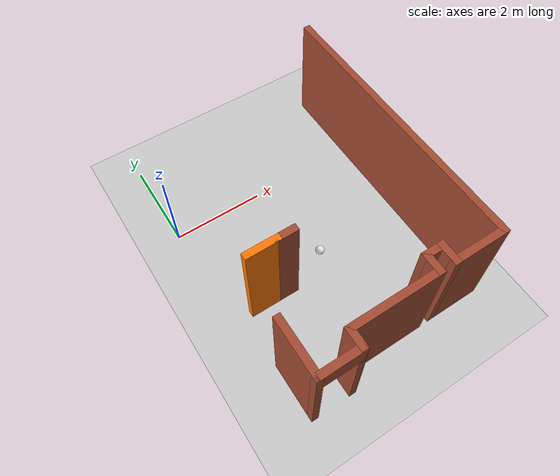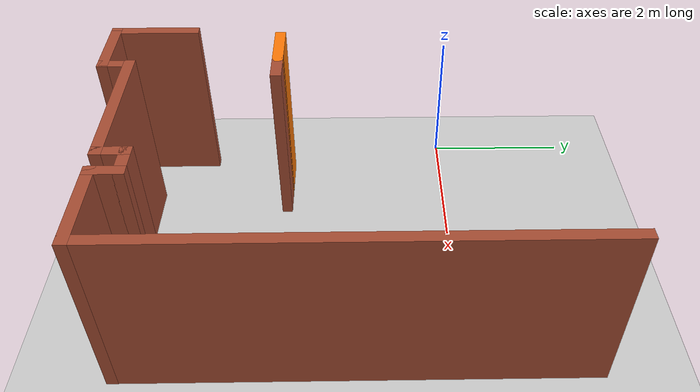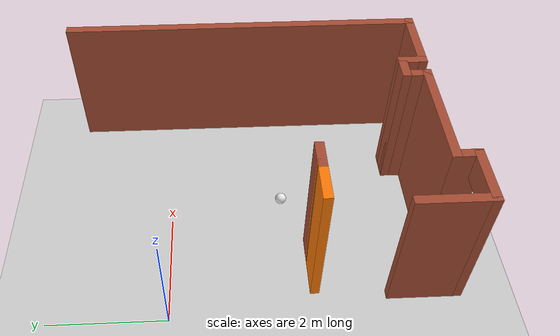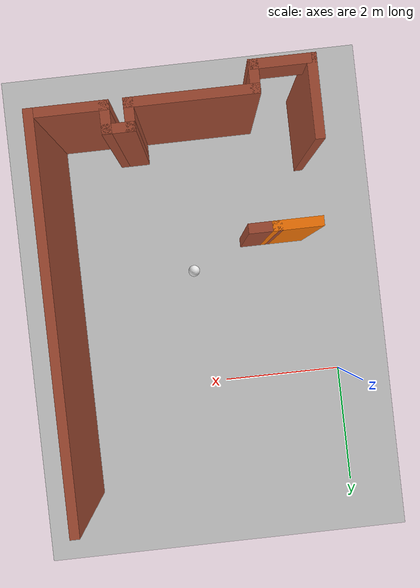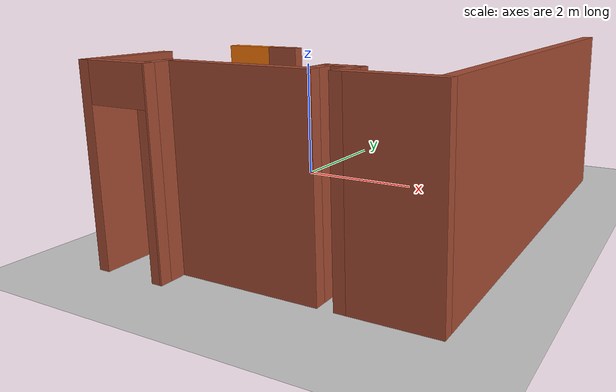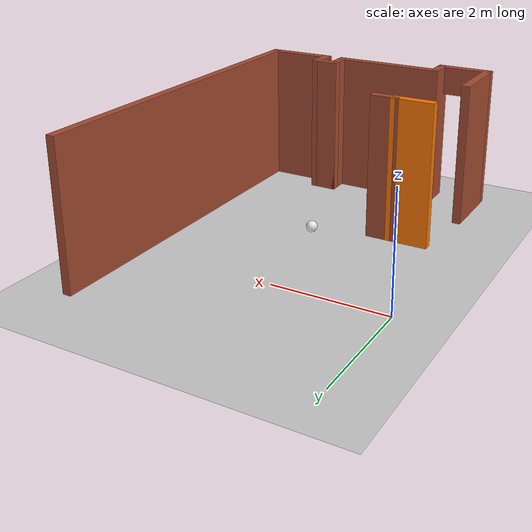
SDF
<sdf version="1.6">
 <world name="default">
  <model name="ground_plane">
   <static>1</static>
   <link name="link">
    <collision name="collision">
     <geometry><plane><normal>0 0 1</normal><size>100 100</size></plane></geometry>
     <surface><friction><ode><mu>100</mu><mu2>50</mu2></ode></friction></surface>
    </collision>
    <visual name="visual">
     <cast_shadows>0</cast_shadows>
     <geometry><plane><normal>0 0 1</normal><size>100 100</size></plane></geometry>
     <material>
      <script><uri>file://media/materials/scripts/gazebo.material</uri><name>Gazebo/Grey</name></script>
     </material>
    </visual>
   </link>
  </model>
  <model name="Home">
   <link name="Wall_10">
    <pose>0.974216 -1.55872 0 0 -0 0</pose>
    <visual name="Wall_10_Visual">
     <pose>0 0 1.25 0 -0 0</pose>
     <geometry><box><size>0.5 0.15 2.5</size></box></geometry>
     <material>
      <script><uri>file://media/materials/scripts/gazebo.material</uri><name>Gazebo/Bricks</name></script>
      <ambient>1 1 1 1</ambient>
     </material>
     <meta><layer>0</layer></meta>
    </visual>
    <collision name="Wall_10_Collision">
     <pose>0 0 1.25 0 -0 0</pose>
     <geometry><box><size>0.5 0.15 2.5</size></box></geometry>
     <surface>
      <friction>
       <ode><mu>1</mu><mu2>1</mu2><fdir1>0 0 0</fdir1><slip1>0</slip1><slip2>0</slip2></ode>
       <torsional>
        <coefficient>1</coefficient>
        <patch_radius>0</patch_radius>
        <surface_radius>0</surface_radius>
        <use_patch_radius>1</use_patch_radius>
        <ode><slip>0</slip></ode>
       </torsional>
      </friction>
      <bounce><restitution_coefficient>0</restitution_coefficient><threshold>1e+06</threshold></bounce>
      <contact>
       <collide_without_contact>0</collide_without_contact>
       <collide_without_contact_bitmask>1</collide_without_contact_bitmask>
       <collide_bitmask>1</collide_bitmask>
       <ode>
        <soft_cfm>0</soft_cfm>
        <soft_erp>0.2</soft_erp>
        <kp>1e+13</kp>
        <kd>1</kd>
        <max_vel>0.01</max_vel>
        <min_depth>0</min_depth>
       </ode>
       <bullet>
        <split_impulse>1</split_impulse>
        <split_impulse_penetration_threshold>-0.01</split_impulse_penetration_threshold>
        <soft_cfm>0</soft_cfm>
        <soft_erp>0.2</soft_erp>
        <kp>1e+13</kp>
        <kd>1</kd>
       </bullet>
      </contact>
     </surface>
    </collision>
   </link>
   <link name="Wall_17">
    <pose>4.19921 -0.508716 0 0 0 -1.5708</pose>
    <visual name="Wall_17_Visual">
     <pose>0 0 1.25 0 -0 0</pose>
     <geometry><box><size>6.25 0.15 2.5</size></box></geometry>
     <material>
      <script><uri>file://media/materials/scripts/gazebo.material</uri><name>Gazebo/Bricks</name></script>
      <ambient>1 1 1 1</ambient>
     </material>
     <meta><layer>0</layer></meta>
    </visual>
    <collision name="Wall_17_Collision">
     <pose>0 0 1.25 0 -0 0</pose>
     <geometry><box><size>6.25 0.15 2.5</size></box></geometry>
     <surface>
      <friction>
       <ode><mu>1</mu><mu2>1</mu2><fdir1>0 0 0</fdir1><slip1>0</slip1><slip2>0</slip2></ode>
       <torsional>
        <coefficient>1</coefficient>
        <patch_radius>0</patch_radius>
        <surface_radius>0</surface_radius>
        <use_patch_radius>1</use_patch_radius>
        <ode><slip>0</slip></ode>
       </torsional>
      </friction>
      <bounce><restitution_coefficient>0</restitution_coefficient><threshold>1e+06</threshold></bounce>
      <contact>
       <collide_without_contact>0</collide_without_contact>
       <collide_without_contact_bitmask>1</collide_without_contact_bitmask>
       <collide_bitmask>1</collide_bitmask>
       <ode>
        <soft_cfm>0</soft_cfm>
        <soft_erp>0.2</soft_erp>
        <kp>1e+13</kp>
        <kd>1</kd>
        <max_vel>0.01</max_vel>
        <min_depth>0</min_depth>
       </ode>
       <bullet>
        <split_impulse>1</split_impulse>
        <split_impulse_penetration_threshold>-0.01</split_impulse_penetration_threshold>
        <soft_cfm>0</soft_cfm>
        <soft_erp>0.2</soft_erp>
        <kp>1e+13</kp>
        <kd>1</kd>
       </bullet>
      </contact>
     </surface>
    </collision>
   </link>
   <link name="Wall_18">
    <pose>3.64922 -3.55872 0 0 -0 3.14159</pose>
    <visual name="Wall_18_Visual">
     <pose>0 0 1.25 0 -0 0</pose>
     <geometry><box><size>1.25 0.15 2.5</size></box></geometry>
     <material>
      <script><uri>file://media/materials/scripts/gazebo.material</uri><name>Gazebo/Bricks</name></script>
      <ambient>1 1 1 1</ambient>
     </material>
     <meta><layer>0</layer></meta>
    </visual>
    <collision name="Wall_18_Collision">
     <pose>0 0 1.25 0 -0 0</pose>
     <geometry><box><size>1.25 0.15 2.5</size></box></geometry>
     <surface>
      <friction>
       <ode><mu>1</mu><mu2>1</mu2><fdir1>0 0 0</fdir1><slip1>0</slip1><slip2>0</slip2></ode>
       <torsional>
        <coefficient>1</coefficient>
        <patch_radius>0</patch_radius>
        <surface_radius>0</surface_radius>
        <use_patch_radius>1</use_patch_radius>
        <ode><slip>0</slip></ode>
       </torsional>
      </friction>
      <bounce><restitution_coefficient>0</restitution_coefficient><threshold>1e+06</threshold></bounce>
      <contact>
       <collide_without_contact>0</collide_without_contact>
       <collide_without_contact_bitmask>1</collide_without_contact_bitmask>
       <collide_bitmask>1</collide_bitmask>
       <ode>
        <soft_cfm>0</soft_cfm>
        <soft_erp>0.2</soft_erp>
        <kp>1e+13</kp>
        <kd>1</kd>
        <max_vel>0.01</max_vel>
        <min_depth>0</min_depth>
       </ode>
       <bullet>
        <split_impulse>1</split_impulse>
        <split_impulse_penetration_threshold>-0.01</split_impulse_penetration_threshold>
        <soft_cfm>0</soft_cfm>
        <soft_erp>0.2</soft_erp>
        <kp>1e+13</kp>
        <kd>1</kd>
       </bullet>
      </contact>
     </surface>
    </collision>
   </link>
   <link name="Wall_19">
    <pose>3.09922 -3.38372 0 0 -0 1.5708</pose>
    <visual name="Wall_19_Visual">
     <pose>0 0 1.25 0 -0 0</pose>
     <geometry><box><size>0.5 0.15 2.5</size></box></geometry>
     <material>
      <script><uri>file://media/materials/scripts/gazebo.material</uri><name>Gazebo/Bricks</name></script>
      <ambient>1 1 1 1</ambient>
     </material>
     <meta><layer>0</layer></meta>
    </visual>
    <collision name="Wall_19_Collision">
     <pose>0 0 1.25 0 -0 0</pose>
     <geometry><box><size>0.5 0.15 2.5</size></box></geometry>
     <surface>
      <friction>
       <ode><mu>1</mu><mu2>1</mu2><fdir1>0 0 0</fdir1><slip1>0</slip1><slip2>0</slip2></ode>
       <torsional>
        <coefficient>1</coefficient>
        <patch_radius>0</patch_radius>
        <surface_radius>0</surface_radius>
        <use_patch_radius>1</use_patch_radius>
        <ode><slip>0</slip></ode>
       </torsional>
      </friction>
      <bounce><restitution_coefficient>0</restitution_coefficient><threshold>1e+06</threshold></bounce>
      <contact>
       <collide_without_contact>0</collide_without_contact>
       <collide_without_contact_bitmask>1</collide_without_contact_bitmask>
       <collide_bitmask>1</collide_bitmask>
       <ode>
        <soft_cfm>0</soft_cfm>
        <soft_erp>0.2</soft_erp>
        <kp>1e+13</kp>
        <kd>1</kd>
        <max_vel>0.01</max_vel>
        <min_depth>0</min_depth>
       </ode>
       <bullet>
        <split_impulse>1</split_impulse>
        <split_impulse_penetration_threshold>-0.01</split_impulse_penetration_threshold>
        <soft_cfm>0</soft_cfm>
        <soft_erp>0.2</soft_erp>
        <kp>1e+13</kp>
        <kd>1</kd>
       </bullet>
      </contact>
     </surface>
    </collision>
   </link>
   <link name="Wall_20">
    <pose>2.92422 -3.20872 0 0 -0 3.14159</pose>
    <visual name="Wall_20_Visual">
     <pose>0 0 1.25 0 -0 0</pose>
     <geometry><box><size>0.5 0.15 2.5</size></box></geometry>
     <material>
      <script><uri>file://media/materials/scripts/gazebo.material</uri><name>Gazebo/Bricks</name></script>
      <ambient>1 1 1 1</ambient>
     </material>
     <meta><layer>0</layer></meta>
    </visual>
    <collision name="Wall_20_Collision">
     <pose>0 0 1.25 0 -0 0</pose>
     <geometry><box><size>0.5 0.15 2.5</size></box></geometry>
     <surface>
      <friction>
       <ode><mu>1</mu><mu2>1</mu2><fdir1>0 0 0</fdir1><slip1>0</slip1><slip2>0</slip2></ode>
       <torsional>
        <coefficient>1</coefficient>
        <patch_radius>0</patch_radius>
        <surface_radius>0</surface_radius>
        <use_patch_radius>1</use_patch_radius>
        <ode><slip>0</slip></ode>
       </torsional>
      </friction>
      <bounce><restitution_coefficient>0</restitution_coefficient><threshold>1e+06</threshold></bounce>
      <contact>
       <collide_without_contact>0</collide_without_contact>
       <collide_without_contact_bitmask>1</collide_without_contact_bitmask>
       <collide_bitmask>1</collide_bitmask>
       <ode>
        <soft_cfm>0</soft_cfm>
        <soft_erp>0.2</soft_erp>
        <kp>1e+13</kp>
        <kd>1</kd>
        <max_vel>0.01</max_vel>
        <min_depth>0</min_depth>
       </ode>
       <bullet>
        <split_impulse>1</split_impulse>
        <split_impulse_penetration_threshold>-0.01</split_impulse_penetration_threshold>
        <soft_cfm>0</soft_cfm>
        <soft_erp>0.2</soft_erp>
        <kp>1e+13</kp>
        <kd>1</kd>
       </bullet>
      </contact>
     </surface>
    </collision>
   </link>
   <link name="Wall_21">
    <pose>2.74922 -3.38372 0 0 0 -1.5708</pose>
    <visual name="Wall_21_Visual">
     <pose>0 0 1.25 0 -0 0</pose>
     <geometry><box><size>0.5 0.15 2.5</size></box></geometry>
     <material>
      <script><uri>file://media/materials/scripts/gazebo.material</uri><name>Gazebo/Bricks</name></script>
      <ambient>1 1 1 1</ambient>
     </material>
     <meta><layer>0</layer></meta>
    </visual>
    <collision name="Wall_21_Collision">
     <pose>0 0 1.25 0 -0 0</pose>
     <geometry><box><size>0.5 0.15 2.5</size></box></geometry>
     <surface>
      <friction>
       <ode><mu>1</mu><mu2>1</mu2><fdir1>0 0 0</fdir1><slip1>0</slip1><slip2>0</slip2></ode>
       <torsional>
        <coefficient>1</coefficient>
        <patch_radius>0</patch_radius>
        <surface_radius>0</surface_radius>
        <use_patch_radius>1</use_patch_radius>
        <ode><slip>0</slip></ode>
       </torsional>
      </friction>
      <bounce><restitution_coefficient>0</restitution_coefficient><threshold>1e+06</threshold></bounce>
      <contact>
       <collide_without_contact>0</collide_without_contact>
       <collide_without_contact_bitmask>1</collide_without_contact_bitmask>
       <collide_bitmask>1</collide_bitmask>
       <ode>
        <soft_cfm>0</soft_cfm>
        <soft_erp>0.2</soft_erp>
        <kp>1e+13</kp>
        <kd>1</kd>
        <max_vel>0.01</max_vel>
        <min_depth>0</min_depth>
       </ode>
       <bullet>
        <split_impulse>1</split_impulse>
        <split_impulse_penetration_threshold>-0.01</split_impulse_penetration_threshold>
        <soft_cfm>0</soft_cfm>
        <soft_erp>0.2</soft_erp>
        <kp>1e+13</kp>
        <kd>1</kd>
       </bullet>
      </contact>
     </surface>
    </collision>
   </link>
   <link name="Wall_22">
    <pose>1.82422 -3.55872 0 0 -0 3.14159</pose>
    <visual name="Wall_22_Visual">
     <pose>0 0 1.25 0 -0 0</pose>
     <geometry><box><size>2 0.15 2.5</size></box></geometry>
     <material>
      <script><uri>file://media/materials/scripts/gazebo.material</uri><name>Gazebo/Bricks</name></script>
      <ambient>1 1 1 1</ambient>
     </material>
     <meta><layer>0</layer></meta>
    </visual>
    <collision name="Wall_22_Collision">
     <pose>0 0 1.25 0 -0 0</pose>
     <geometry><box><size>2 0.15 2.5</size></box></geometry>
     <surface>
      <friction>
       <ode><mu>1</mu><mu2>1</mu2><fdir1>0 0 0</fdir1><slip1>0</slip1><slip2>0</slip2></ode>
       <torsional>
        <coefficient>1</coefficient>
        <patch_radius>0</patch_radius>
        <surface_radius>0</surface_radius>
        <use_patch_radius>1</use_patch_radius>
        <ode><slip>0</slip></ode>
       </torsional>
      </friction>
      <bounce><restitution_coefficient>0</restitution_coefficient><threshold>1e+06</threshold></bounce>
      <contact>
       <collide_without_contact>0</collide_without_contact>
       <collide_without_contact_bitmask>1</collide_without_contact_bitmask>
       <collide_bitmask>1</collide_bitmask>
       <ode>
        <soft_cfm>0</soft_cfm>
        <soft_erp>0.2</soft_erp>
        <kp>1e+13</kp>
        <kd>1</kd>
        <max_vel>0.01</max_vel>
        <min_depth>0</min_depth>
       </ode>
       <bullet>
        <split_impulse>1</split_impulse>
        <split_impulse_penetration_threshold>-0.01</split_impulse_penetration_threshold>
        <soft_cfm>0</soft_cfm>
        <soft_erp>0.2</soft_erp>
        <kp>1e+13</kp>
        <kd>1</kd>
       </bullet>
      </contact>
     </surface>
    </collision>
   </link>
   <link name="Wall_23">
    <pose>0.899216 -3.73372 0 0 0 -1.5708</pose>
    <visual name="Wall_23_Visual">
     <pose>0 0 1.25 0 -0 0</pose>
     <geometry><box><size>0.5 0.15 2.5</size></box></geometry>
     <material>
      <script><uri>file://media/materials/scripts/gazebo.material</uri><name>Gazebo/Bricks</name></script>
      <ambient>1 1 1 1</ambient>
     </material>
     <meta><layer>0</layer></meta>
    </visual>
    <collision name="Wall_23_Collision">
     <pose>0 0 1.25 0 -0 0</pose>
     <geometry><box><size>0.5 0.15 2.5</size></box></geometry>
     <surface>
      <friction>
       <ode><mu>1</mu><mu2>1</mu2><fdir1>0 0 0</fdir1><slip1>0</slip1><slip2>0</slip2></ode>
       <torsional>
        <coefficient>1</coefficient>
        <patch_radius>0</patch_radius>
        <surface_radius>0</surface_radius>
        <use_patch_radius>1</use_patch_radius>
        <ode><slip>0</slip></ode>
       </torsional>
      </friction>
      <bounce><restitution_coefficient>0</restitution_coefficient><threshold>1e+06</threshold></bounce>
      <contact>
       <collide_without_contact>0</collide_without_contact>
       <collide_without_contact_bitmask>1</collide_without_contact_bitmask>
       <collide_bitmask>1</collide_bitmask>
       <ode>
        <soft_cfm>0</soft_cfm>
        <soft_erp>0.2</soft_erp>
        <kp>1e+13</kp>
        <kd>1</kd>
        <max_vel>0.01</max_vel>
        <min_depth>0</min_depth>
       </ode>
       <bullet>
        <split_impulse>1</split_impulse>
        <split_impulse_penetration_threshold>-0.01</split_impulse_penetration_threshold>
        <soft_cfm>0</soft_cfm>
        <soft_erp>0.2</soft_erp>
        <kp>1e+13</kp>
        <kd>1</kd>
       </bullet>
      </contact>
     </surface>
    </collision>
   </link>
   <link name="Wall_24">
    <pose>0.474216 -3.90872 0 0 -0 3.14159</pose>
    <visual name="Wall_24_Visual_0">
     <pose>-0.486877 0 1.25 0 -0 0</pose>
     <geometry><box><size>0.026247 0.15 2.5</size></box></geometry>
     <material>
      <script><uri>file://media/materials/scripts/gazebo.material</uri><name>Gazebo/Bricks</name></script>
      <ambient>1 1 1 1</ambient>
     </material>
     <meta><layer>0</layer></meta>
    </visual>
    <visual name="Wall_24_Visual_1">
     <pose>0.463123 0 1.25 0 -0 0</pose>
     <geometry><box><size>0.073753 0.15 2.5</size></box></geometry>
     <material>
      <script><uri>file://media/materials/scripts/gazebo.material</uri><name>Gazebo/Bricks</name></script>
      <ambient>1 1 1 1</ambient>
     </material>
     <meta><layer>0</layer></meta>
    </visual>
    <visual name="Wall_24_Visual_2">
     <pose>-0.023753 0 2.25 0 -0 0</pose>
     <geometry><box><size>0.9 0.15 0.5</size></box></geometry>
     <material>
      <script><uri>file://media/materials/scripts/gazebo.material</uri><name>Gazebo/Bricks</name></script>
      <ambient>1 1 1 1</ambient>
     </material>
     <meta><layer>0</layer></meta>
    </visual>
    <collision name="Wall_24_Collision_0">
     <pose>-0.486877 0 1.25 0 -0 0</pose>
     <geometry><box><size>0.026247 0.15 2.5</size></box></geometry>
     <surface>
      <friction>
       <ode><mu>1</mu><mu2>1</mu2><fdir1>0 0 0</fdir1><slip1>0</slip1><slip2>0</slip2></ode>
       <torsional>
        <coefficient>1</coefficient>
        <patch_radius>0</patch_radius>
        <surface_radius>0</surface_radius>
        <use_patch_radius>1</use_patch_radius>
        <ode><slip>0</slip></ode>
       </torsional>
      </friction>
      <bounce><restitution_coefficient>0</restitution_coefficient><threshold>1e+06</threshold></bounce>
      <contact>
       <collide_without_contact>0</collide_without_contact>
       <collide_without_contact_bitmask>1</collide_without_contact_bitmask>
       <collide_bitmask>1</collide_bitmask>
       <ode>
        <soft_cfm>0</soft_cfm>
        <soft_erp>0.2</soft_erp>
        <kp>1e+13</kp>
        <kd>1</kd>
        <max_vel>0.01</max_vel>
        <min_depth>0</min_depth>
       </ode>
       <bullet>
        <split_impulse>1</split_impulse>
        <split_impulse_penetration_threshold>-0.01</split_impulse_penetration_threshold>
        <soft_cfm>0</soft_cfm>
        <soft_erp>0.2</soft_erp>
        <kp>1e+13</kp>
        <kd>1</kd>
       </bullet>
      </contact>
     </surface>
    </collision>
    <collision name="Wall_24_Collision_1">
     <pose>0.463123 0 1.25 0 -0 0</pose>
     <geometry><box><size>0.073753 0.15 2.5</size></box></geometry>
     <surface>
      <friction>
       <ode><mu>1</mu><mu2>1</mu2><fdir1>0 0 0</fdir1><slip1>0</slip1><slip2>0</slip2></ode>
       <torsional>
        <coefficient>1</coefficient>
        <patch_radius>0</patch_radius>
        <surface_radius>0</surface_radius>
        <use_patch_radius>1</use_patch_radius>
        <ode><slip>0</slip></ode>
       </torsional>
      </friction>
      <bounce><restitution_coefficient>0</restitution_coefficient><threshold>1e+06</threshold></bounce>
      <contact>
       <collide_without_contact>0</collide_without_contact>
       <collide_without_contact_bitmask>1</collide_without_contact_bitmask>
       <collide_bitmask>1</collide_bitmask>
       <ode>
        <soft_cfm>0</soft_cfm>
        <soft_erp>0.2</soft_erp>
        <kp>1e+13</kp>
        <kd>1</kd>
        <max_vel>0.01</max_vel>
        <min_depth>0</min_depth>
       </ode>
       <bullet>
        <split_impulse>1</split_impulse>
        <split_impulse_penetration_threshold>-0.01</split_impulse_penetration_threshold>
        <soft_cfm>0</soft_cfm>
        <soft_erp>0.2</soft_erp>
        <kp>1e+13</kp>
        <kd>1</kd>
       </bullet>
      </contact>
     </surface>
    </collision>
    <collision name="Wall_24_Collision_2">
     <pose>-0.023753 0 2.25 0 -0 0</pose>
     <geometry><box><size>0.9 0.15 0.5</size></box></geometry>
     <surface>
      <friction>
       <ode><mu>1</mu><mu2>1</mu2><fdir1>0 0 0</fdir1><slip1>0</slip1><slip2>0</slip2></ode>
       <torsional>
        <coefficient>1</coefficient>
        <patch_radius>0</patch_radius>
        <surface_radius>0</surface_radius>
        <use_patch_radius>1</use_patch_radius>
        <ode><slip>0</slip></ode>
       </torsional>
      </friction>
      <bounce><restitution_coefficient>0</restitution_coefficient><threshold>1e+06</threshold></bounce>
      <contact>
       <collide_without_contact>0</collide_without_contact>
       <collide_without_contact_bitmask>1</collide_without_contact_bitmask>
       <collide_bitmask>1</collide_bitmask>
       <ode>
        <soft_cfm>0</soft_cfm>
        <soft_erp>0.2</soft_erp>
        <kp>1e+13</kp>
        <kd>1</kd>
        <max_vel>0.01</max_vel>
        <min_depth>0</min_depth>
       </ode>
       <bullet>
        <split_impulse>1</split_impulse>
        <split_impulse_penetration_threshold>-0.01</split_impulse_penetration_threshold>
        <soft_cfm>0</soft_cfm>
        <soft_erp>0.2</soft_erp>
        <kp>1e+13</kp>
        <kd>1</kd>
       </bullet>
      </contact>
     </surface>
    </collision>
   </link>
   <link name="Wall_25">
    <pose>0.049216 -3.35872 0 0 -0 1.5708</pose>
    <visual name="Wall_25_Visual">
     <pose>0 0 1.25 0 -0 0</pose>
     <geometry><box><size>1.25 0.15 2.5</size></box></geometry>
     <material>
      <script><uri>file://media/materials/scripts/gazebo.material</uri><name>Gazebo/Bricks</name></script>
      <ambient>1 1 1 1</ambient>
     </material>
     <meta><layer>0</layer></meta>
    </visual>
    <collision name="Wall_25_Collision">
     <pose>0 0 1.25 0 -0 0</pose>
     <geometry><box><size>1.25 0.15 2.5</size></box></geometry>
     <surface>
      <friction>
       <ode><mu>1</mu><mu2>1</mu2><fdir1>0 0 0</fdir1><slip1>0</slip1><slip2>0</slip2></ode>
       <torsional>
        <coefficient>1</coefficient>
        <patch_radius>0</patch_radius>
        <surface_radius>0</surface_radius>
        <use_patch_radius>1</use_patch_radius>
        <ode><slip>0</slip></ode>
       </torsional>
      </friction>
      <bounce><restitution_coefficient>0</restitution_coefficient><threshold>1e+06</threshold></bounce>
      <contact>
       <collide_without_contact>0</collide_without_contact>
       <collide_without_contact_bitmask>1</collide_without_contact_bitmask>
       <collide_bitmask>1</collide_bitmask>
       <ode>
        <soft_cfm>0</soft_cfm>
        <soft_erp>0.2</soft_erp>
        <kp>1e+13</kp>
        <kd>1</kd>
        <max_vel>0.01</max_vel>
        <min_depth>0</min_depth>
       </ode>
       <bullet>
        <split_impulse>1</split_impulse>
        <split_impulse_penetration_threshold>-0.01</split_impulse_penetration_threshold>
        <soft_cfm>0</soft_cfm>
        <soft_erp>0.2</soft_erp>
        <kp>1e+13</kp>
        <kd>1</kd>
       </bullet>
      </contact>
     </surface>
    </collision>
   </link>
   <link name="Wall_8">
    <pose>0.498981 -1.55887 0 0 0 -3.14107</pose>
    <visual name="Wall_8_Visual">
     <pose>0 0 1.25 0 -0 0</pose>
     <geometry><box><size>0.75 0.15 2.5</size></box></geometry>
     <material>
      <script><uri>file://media/materials/scripts/gazebo.material</uri><name>Gazebo/Grey</name></script>
      <ambient>0.996078 0.47451 0.0196078 1</ambient>
     </material>
     <meta><layer>0</layer></meta>
    </visual>
    <collision name="Wall_8_Collision">
     <pose>0 0 1.25 0 -0 0</pose>
     <geometry><box><size>0.75 0.15 2.5</size></box></geometry>
     <surface>
      <friction>
       <ode><mu>1</mu><mu2>1</mu2><fdir1>0 0 0</fdir1><slip1>0</slip1><slip2>0</slip2></ode>
       <torsional>
        <coefficient>1</coefficient>
        <patch_radius>0</patch_radius>
        <surface_radius>0</surface_radius>
        <use_patch_radius>1</use_patch_radius>
        <ode><slip>0</slip></ode>
       </torsional>
      </friction>
      <bounce><restitution_coefficient>0</restitution_coefficient><threshold>1e+06</threshold></bounce>
      <contact>
       <collide_without_contact>0</collide_without_contact>
       <collide_without_contact_bitmask>1</collide_without_contact_bitmask>
       <collide_bitmask>1</collide_bitmask>
       <ode>
        <soft_cfm>0</soft_cfm>
        <soft_erp>0.2</soft_erp>
        <kp>1e+13</kp>
        <kd>1</kd>
        <max_vel>0.01</max_vel>
        <min_depth>0</min_depth>
       </ode>
       <bullet>
        <split_impulse>1</split_impulse>
        <split_impulse_penetration_threshold>-0.01</split_impulse_penetration_threshold>
        <soft_cfm>0</soft_cfm>
        <soft_erp>0.2</soft_erp>
        <kp>1e+13</kp>
        <kd>1</kd>
       </bullet>
      </contact>
     </surface>
    </collision>
   </link>
   <static>1</static>
   <pose>0.277352 -0.848927 0 0 -0 0</pose>
  </model>
  <model name="my_ball">
   <link name="link_0">
    <inertial>
     <mass>1</mass>
     <inertia><ixx>0.1</ixx><ixy>0</ixy><ixz>0</ixz><iyy>0.1</iyy><iyz>0</iyz><izz>0.1</izz></inertia>
    </inertial>
    <visual name="visual">
     <geometry><sphere><radius>0.1</radius></sphere></geometry>
     <material>
      <lighting>1</lighting>
      <script><uri>file://media/materials/scripts/gazebo.material</uri><name>Gazebo/White</name></script>
      <shader type="vertex"><normal_map>__default__</normal_map></shader>
      <ambient>1 1 1 1</ambient>
      <diffuse>1 1 1 1</diffuse>
      <specular>1 1 1 1</specular>
      <emissive>1 1 1 1</emissive>
     </material>
    </visual>
    <collision name="collision">
     <geometry><sphere><radius>0.1</radius></sphere></geometry>
     <surface>
      <friction>
       <ode><mu>1</mu><mu2>1</mu2><fdir1>0 0 0</fdir1><slip1>0</slip1><slip2>0</slip2></ode>
       <torsional>
        <coefficient>1</coefficient>
        <patch_radius>0</patch_radius>
        <surface_radius>0</surface_radius>
        <use_patch_radius>1</use_patch_radius>
        <ode><slip>0</slip></ode>
       </torsional>
      </friction>
      <bounce><restitution_coefficient>0</restitution_coefficient><threshold>1e+06</threshold></bounce>
      <contact>
       <collide_without_contact>0</collide_without_contact>
       <collide_without_contact_bitmask>1</collide_without_contact_bitmask>
       <collide_bitmask>1</collide_bitmask>
       <ode>
        <soft_cfm>0</soft_cfm>
        <soft_erp>0.2</soft_erp>
        <kp>1e+13</kp>
        <kd>1</kd>
        <max_vel>0.01</max_vel>
        <min_depth>0</min_depth>
       </ode>
       <bullet>
        <split_impulse>1</split_impulse>
        <split_impulse_penetration_threshold>-0.01</split_impulse_penetration_threshold>
        <soft_cfm>0</soft_cfm>
        <soft_erp>0.2</soft_erp>
        <kp>1e+13</kp>
        <kd>1</kd>
       </bullet>
      </contact>
     </surface>
    </collision>
   </link>
   <static>0</static>
   <pose>2.37085 -1.99676 0.118261 0 -0 0</pose>
  </model>
 </world>
</sdf>
